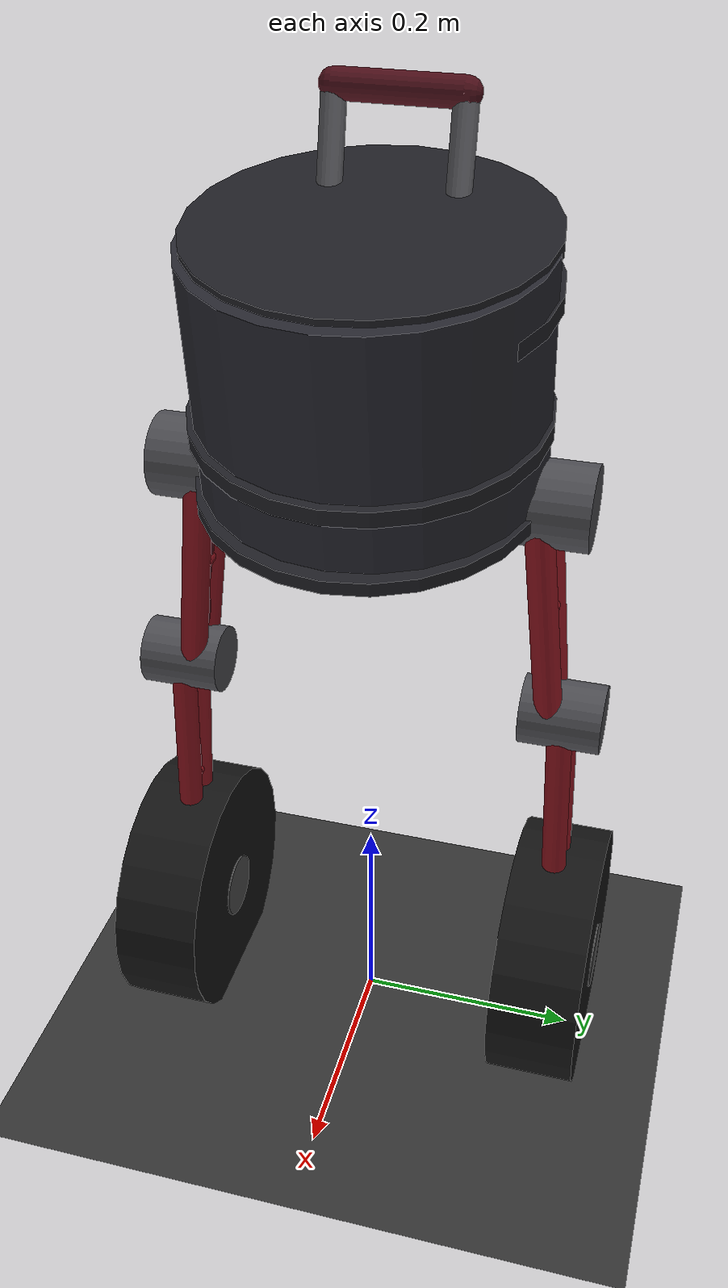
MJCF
<mujoco model="two_wheel_legged_robot">
  <compiler angle="radian" coordinate="local"/>

  <option timestep="0.002" gravity="0 0 -9.81" integrator="RK4">
    <flag warmstart="enable"/>
  </option>

  <default>
    <joint damping="0.5" armature="0.02"/>
    <geom contype="1" conaffinity="1" friction="1.5 0.005 0.0001"/>
    <motor ctrllimited="true" ctrlrange="-20 20"/>
  </default>

  <asset>
    <!-- Sky -->
    <texture type="skybox" builtin="gradient" rgb1="0.4 0.6 0.8" rgb2="0.05 0.05 0.15"
             width="512" height="512"/>
    <!-- Ground -->
    <texture name="texplane" type="2d" builtin="checker" rgb1="0.25 0.25 0.25"
             rgb2="0.15 0.15 0.15" width="512" height="512" mark="cross" markrgb="0.6 0.6 0.6"/>
    <material name="matplane" reflectance="0.3" texture="texplane" texrepeat="5 5" texuniform="true"/>

    <!-- Robot materials -->
    <material name="body_dark"    rgba="0.15 0.15 0.18 1" specular="0.3" shininess="0.5"/>
    <material name="body_cap"     rgba="0.12 0.12 0.14 1" specular="0.2"/>
    <material name="frame_red"    rgba="0.55 0.08 0.12 1" specular="0.4" shininess="0.6"/>
    <material name="frame_dark"   rgba="0.30 0.06 0.10 1" specular="0.3"/>
    <material name="wheel_rubber" rgba="0.08 0.08 0.08 1" specular="0.1"/>
    <material name="wheel_rim"    rgba="0.60 0.10 0.12 1" specular="0.5" shininess="0.7"/>
    <material name="wheel_hub"    rgba="0.30 0.30 0.30 1" specular="0.4"/>
    <material name="metal"        rgba="0.40 0.40 0.42 1" specular="0.5"/>
    <material name="joint_metal"  rgba="0.30 0.30 0.32 1" specular="0.4"/>
  </asset>

  <worldbody>
    <!-- Ground plane -->
    <geom name="floor" pos="0 0 0" size="50 50 0.1" type="plane" material="matplane" condim="3"/>

    <!-- Lighting -->
    <light directional="true" diffuse="0.8 0.8 0.8" specular="0.3 0.3 0.3" pos="0 0 5" dir="0 0 -1"/>
    <light directional="true" diffuse="0.3 0.3 0.3" specular="0.1 0.1 0.1" pos="2 2 4" dir="-0.3 -0.3 -1"/>

    <!--  BODY  (barrel-shaped torso, floating base)                      -->
    <!--  Default standing height ~0.55 m                                 -->
    <!--  Kinematic chain per leg:                                        -->
    <!--    body → hip_joint → thigh → knee_joint → shin → wheel_joint   -->
    <body name="body" pos="0 0 0.68">
      <freejoint name="root"/>
      <inertial pos="0 0 -0.02" mass="3.0" diaginertia="0.02 0.02 0.015"/>

      <!-- Main barrel / torso (shorter: 0.20m tall) -->
      <geom name="barrel_main" type="cylinder" size="0.14 0.10"
            pos="0 0 0.0" euler="0 0.12 0" material="body_dark"
            contype="0" conaffinity="0"/>
      <!-- End caps -->
      <geom name="cap_top" type="cylinder" size="0.14 0.006"
            pos="0 0 0.10" euler="0 0.12 0" material="body_cap"
            contype="0" conaffinity="0"/>
      <geom name="cap_bot" type="cylinder" size="0.14 0.006"
            pos="0 0 -0.10" euler="0 0.12 0" material="body_cap"
            contype="0" conaffinity="0"/>
      <!-- Decorative ribs -->
      <geom name="rib1" type="cylinder" size="0.143 0.007"
            pos="0 0 -0.04" euler="0 0.12 0" material="body_cap"
            contype="0" conaffinity="0"/>
      <geom name="rib2" type="cylinder" size="0.143 0.007"
            pos="0 0 0.06" euler="0 0.12 0" material="body_cap"
            contype="0" conaffinity="0"/>

      <!-- Handle on top-rear (lowered) -->
      <geom name="handle_L" type="capsule" size="0.01"
            fromto="-0.06 0.05 0.10  -0.08 0.05 0.18" material="metal"
            contype="0" conaffinity="0"/>
      <geom name="handle_R" type="capsule" size="0.01"
            fromto="-0.06 -0.05 0.10  -0.08 -0.05 0.18" material="metal"
            contype="0" conaffinity="0"/>
      <geom name="handle_bar" type="capsule" size="0.012"
            fromto="-0.08 0.05 0.18  -0.08 -0.05 0.18" material="frame_dark"
            contype="0" conaffinity="0"/>

      <!-- IMU site (center of body) -->
      <site name="imu" pos="0 0 0.0" size="0.005"/>

      <!-- Safety collision sphere at bottom of body -->
      <geom name="body_collision" type="sphere" size="0.10"
            pos="0 0 -0.08" rgba="0.15 0.15 0.18 0"
            mass="0.01" friction="0.5 0.005 0.0001" condim="3"/>

      <!--  LEFT LEG                                                     -->
      <!--  body → hip_joint → thigh → knee_joint → shin → wheel        -->
      <body name="left_thigh" pos="0 0.12 -0.10">
        <joint name="left_hip" type="hinge" axis="0 1 0"
               pos="0 0 0" range="-1.2 1.2" damping="1.0" armature="0.05"
               stiffness="3"/>
        <inertial pos="0 0.02 -0.10" mass="0.6" diaginertia="0.003 0.003 0.001"/>

        <!-- Hip joint housing -->
        <geom name="left_hip_housing" type="cylinder" size="0.035 0.04"
              pos="0 0.02 0" euler="1.5708 0 0" material="joint_metal"
              contype="0" conaffinity="0"/>

        <!-- Thigh lattice frame (two main struts + cross braces) -->
        <geom name="lt_strut_front" type="capsule" size="0.012"
              fromto="0.02 0.02 -0.01  0.015 0.04 -0.20" material="frame_red"
              contype="0" conaffinity="0"/>
        <geom name="lt_strut_rear" type="capsule" size="0.012"
              fromto="-0.025 0.02 -0.01  -0.015 0.04 -0.20" material="frame_red"
              contype="0" conaffinity="0"/>
        <!-- Cross brace X pattern -->
        <geom name="lt_cross1" type="capsule" size="0.006"
              fromto="0.02 0.02 -0.01  -0.015 0.04 -0.20" material="frame_dark"
              contype="0" conaffinity="0"/>
        <geom name="lt_cross2" type="capsule" size="0.006"
              fromto="-0.025 0.02 -0.01  0.015 0.04 -0.20" material="frame_dark"
              contype="0" conaffinity="0"/>
        <!-- Horizontal brace -->
        <geom name="lt_brace_mid" type="capsule" size="0.008"
              fromto="0.018 0.03 -0.10  -0.018 0.03 -0.10" material="frame_red"
              contype="0" conaffinity="0"/>

        <!--  LEFT SHIN (lower leg)                                    -->
        <body name="left_shin" pos="0 0.04 -0.20">
          <joint name="left_knee" type="hinge" axis="0 1 0"
                 pos="0 0 0" range="-1.8 1.8" damping="0.8" armature="0.04"
                 stiffness="2"/>
          <inertial pos="0 0.01 -0.14" mass="0.4" diaginertia="0.003 0.003 0.0006"/>

          <!-- Knee joint housing -->
          <geom name="left_knee_housing" type="cylinder" size="0.030 0.035"
                pos="0 0.01 0" euler="1.5708 0 0" material="joint_metal"
                contype="0" conaffinity="0"/>

          <!-- Shin struts (longer: 0.28m) -->
          <geom name="ls_strut_front" type="capsule" size="0.011"
                fromto="0.015 0.01 -0.01  0.01 0.02 -0.27" material="frame_red"
                contype="0" conaffinity="0"/>
          <geom name="ls_strut_rear" type="capsule" size="0.011"
                fromto="-0.02 0.01 -0.01  -0.01 0.02 -0.27" material="frame_red"
                contype="0" conaffinity="0"/>
          <!-- Cross braces -->
          <geom name="ls_cross1" type="capsule" size="0.005"
                fromto="0.015 0.01 -0.01  -0.01 0.02 -0.27" material="frame_dark"
                contype="0" conaffinity="0"/>
          <geom name="ls_cross2" type="capsule" size="0.005"
                fromto="-0.02 0.01 -0.01  0.01 0.02 -0.27" material="frame_dark"
                contype="0" conaffinity="0"/>
          <!-- Mid brace -->
          <geom name="ls_brace_mid" type="capsule" size="0.007"
                fromto="0.013 0.015 -0.14  -0.015 0.015 -0.14" material="frame_red"
                contype="0" conaffinity="0"/>

          <!--  LEFT WHEEL                                               -->
          <body name="left_wheel" pos="0 0.02 -0.28">
            <joint name="left_wheel_joint" type="hinge" axis="0 1 0"
                   damping="0.03" armature="0.01"/>
            <inertial pos="0 0 0" mass="0.8" diaginertia="0.003 0.003 0.005"/>

            <!-- Tire -->
            <geom name="left_tire" type="cylinder" size="0.12 0.04"
                  euler="1.5708 0 0" material="wheel_rubber"
                  friction="2.0 0.005 0.0001" condim="4"/>
            <!-- Rim -->
            <geom name="left_rim" type="cylinder" size="0.09 0.035"
                  euler="1.5708 0 0" material="wheel_rim"
                  contype="0" conaffinity="0"/>
            <!-- Hub -->
            <geom name="left_hub" type="cylinder" size="0.03 0.042"
                  euler="1.5708 0 0" material="wheel_hub"
                  contype="0" conaffinity="0"/>
          </body>
        </body>
      </body>

      <!--  RIGHT LEG  (mirrored)                                       -->
      <body name="right_thigh" pos="0 -0.12 -0.10">
        <joint name="right_hip" type="hinge" axis="0 1 0"
               pos="0 0 0" range="-1.2 1.2" damping="1.0" armature="0.05"
               stiffness="3"/>
        <inertial pos="0 -0.02 -0.10" mass="0.6" diaginertia="0.003 0.003 0.001"/>

        <!-- Hip joint housing -->
        <geom name="right_hip_housing" type="cylinder" size="0.035 0.04"
              pos="0 -0.02 0" euler="1.5708 0 0" material="joint_metal"
              contype="0" conaffinity="0"/>

        <!-- Thigh lattice frame -->
        <geom name="rt_strut_front" type="capsule" size="0.012"
              fromto="0.02 -0.02 -0.01  0.015 -0.04 -0.20" material="frame_red"
              contype="0" conaffinity="0"/>
        <geom name="rt_strut_rear" type="capsule" size="0.012"
              fromto="-0.025 -0.02 -0.01  -0.015 -0.04 -0.20" material="frame_red"
              contype="0" conaffinity="0"/>
        <geom name="rt_cross1" type="capsule" size="0.006"
              fromto="0.02 -0.02 -0.01  -0.015 -0.04 -0.20" material="frame_dark"
              contype="0" conaffinity="0"/>
        <geom name="rt_cross2" type="capsule" size="0.006"
              fromto="-0.025 -0.02 -0.01  0.015 -0.04 -0.20" material="frame_dark"
              contype="0" conaffinity="0"/>
        <geom name="rt_brace_mid" type="capsule" size="0.008"
              fromto="0.018 -0.03 -0.10  -0.018 -0.03 -0.10" material="frame_red"
              contype="0" conaffinity="0"/>

        <!--  RIGHT SHIN                                               -->
        <body name="right_shin" pos="0 -0.04 -0.20">
          <joint name="right_knee" type="hinge" axis="0 1 0"
                 pos="0 0 0" range="-1.8 1.8" damping="0.8" armature="0.04"
                 stiffness="2"/>
          <inertial pos="0 -0.01 -0.14" mass="0.4" diaginertia="0.003 0.003 0.0006"/>

          <!-- Knee joint housing -->
          <geom name="right_knee_housing" type="cylinder" size="0.030 0.035"
                pos="0 -0.01 0" euler="1.5708 0 0" material="joint_metal"
                contype="0" conaffinity="0"/>

          <!-- Shin struts (longer: 0.28m) -->
          <geom name="rs_strut_front" type="capsule" size="0.011"
                fromto="0.015 -0.01 -0.01  0.01 -0.02 -0.27" material="frame_red"
                contype="0" conaffinity="0"/>
          <geom name="rs_strut_rear" type="capsule" size="0.011"
                fromto="-0.02 -0.01 -0.01  -0.01 -0.02 -0.27" material="frame_red"
                contype="0" conaffinity="0"/>
          <geom name="rs_cross1" type="capsule" size="0.005"
                fromto="0.015 -0.01 -0.01  -0.01 -0.02 -0.27" material="frame_dark"
                contype="0" conaffinity="0"/>
          <geom name="rs_cross2" type="capsule" size="0.005"
                fromto="-0.02 -0.01 -0.01  0.01 -0.02 -0.27" material="frame_dark"
                contype="0" conaffinity="0"/>
          <geom name="rs_brace_mid" type="capsule" size="0.007"
                fromto="0.013 -0.015 -0.14  -0.015 -0.015 -0.14" material="frame_red"
                contype="0" conaffinity="0"/>

          <!--  RIGHT WHEEL                                              -->
          <body name="right_wheel" pos="0 -0.02 -0.28">
            <joint name="right_wheel_joint" type="hinge" axis="0 1 0"
                   damping="0.03" armature="0.01"/>
            <inertial pos="0 0 0" mass="0.8" diaginertia="0.003 0.003 0.005"/>

            <!-- Tire -->
            <geom name="right_tire" type="cylinder" size="0.12 0.04"
                  euler="1.5708 0 0" material="wheel_rubber"
                  friction="2.0 0.005 0.0001" condim="4"/>
            <!-- Rim -->
            <geom name="right_rim" type="cylinder" size="0.09 0.035"
                  euler="1.5708 0 0" material="wheel_rim"
                  contype="0" conaffinity="0"/>
            <!-- Hub -->
            <geom name="right_hub" type="cylinder" size="0.03 0.042"
                  euler="1.5708 0 0" material="wheel_hub"
                  contype="0" conaffinity="0"/>
          </body>
        </body>
      </body>

    </body> <!-- end body -->
  </worldbody>

  <!--  ACTUATORS  (6 total: 2 wheels + 2 hips + 2 knees)              -->
  <actuator>
    <!-- Wheel motors (driving) -->
    <motor name="left_wheel_motor"  joint="left_wheel_joint"  gear="1" ctrllimited="true" ctrlrange="-40 40"/>
    <motor name="right_wheel_motor" joint="right_wheel_joint" gear="1" ctrllimited="true" ctrlrange="-40 40"/>
    <!-- Hip motors (thigh rotation - posture control) -->
    <motor name="left_hip_motor"  joint="left_hip"  gear="1" ctrllimited="true" ctrlrange="-50 50"/>
    <motor name="right_hip_motor" joint="right_hip" gear="1" ctrllimited="true" ctrlrange="-50 50"/>
    <!-- Knee motors (shin rotation - posture control) -->
    <motor name="left_knee_motor"  joint="left_knee"  gear="1" ctrllimited="true" ctrlrange="-50 50"/>
    <motor name="right_knee_motor" joint="right_knee" gear="1" ctrllimited="true" ctrlrange="-50 50"/>
  </actuator>

  <!--  SENSORS                                                         -->
  <sensor>
    <!-- Body IMU -->
    <framequat      name="body_quat"    objtype="body" objname="body"/>
    <gyro           name="body_gyro"    site="imu"/>
    <accelerometer  name="body_accel"   site="imu"/>
    <framepos       name="body_pos"     objtype="body" objname="body"/>
    <framelinvel    name="body_vel"     objtype="body" objname="body"/>

    <!-- Leg joints -->
    <jointpos name="left_hip_pos"   joint="left_hip"/>
    <jointvel name="left_hip_vel"   joint="left_hip"/>
    <jointpos name="left_knee_pos"  joint="left_knee"/>
    <jointvel name="left_knee_vel"  joint="left_knee"/>
    <jointpos name="right_hip_pos"  joint="right_hip"/>
    <jointvel name="right_hip_vel"  joint="right_hip"/>
    <jointpos name="right_knee_pos" joint="right_knee"/>
    <jointvel name="right_knee_vel" joint="right_knee"/>

    <!-- Wheel encoders -->
    <jointpos name="left_wheel_pos"  joint="left_wheel_joint"/>
    <jointvel name="left_wheel_vel"  joint="left_wheel_joint"/>
    <jointpos name="right_wheel_pos" joint="right_wheel_joint"/>
    <jointvel name="right_wheel_vel" joint="right_wheel_joint"/>
  </sensor>
</mujoco>
